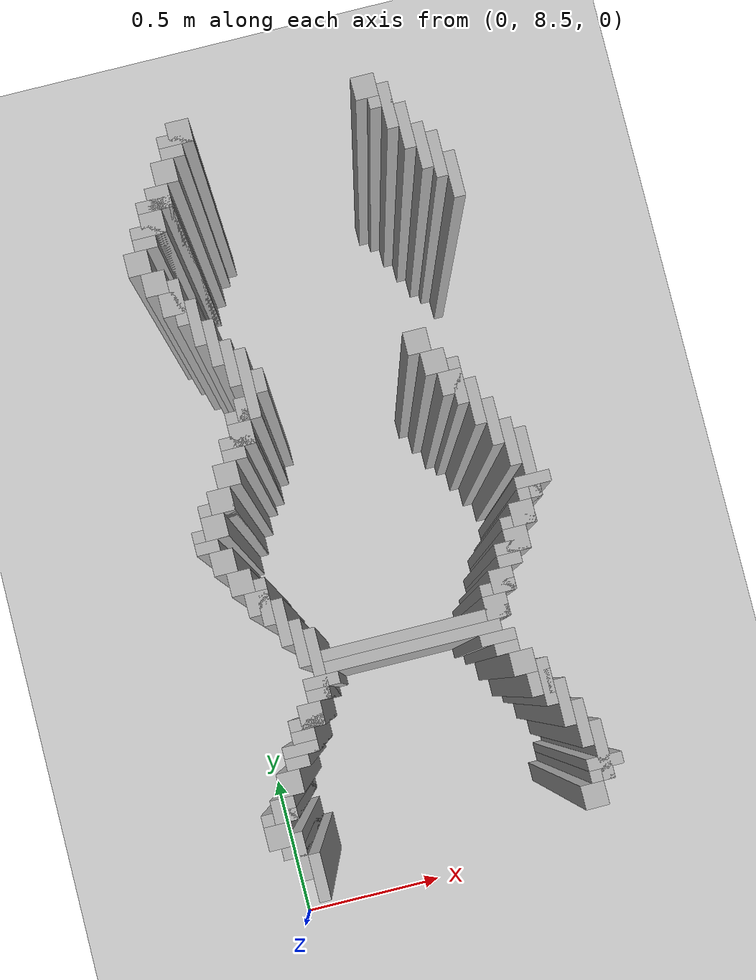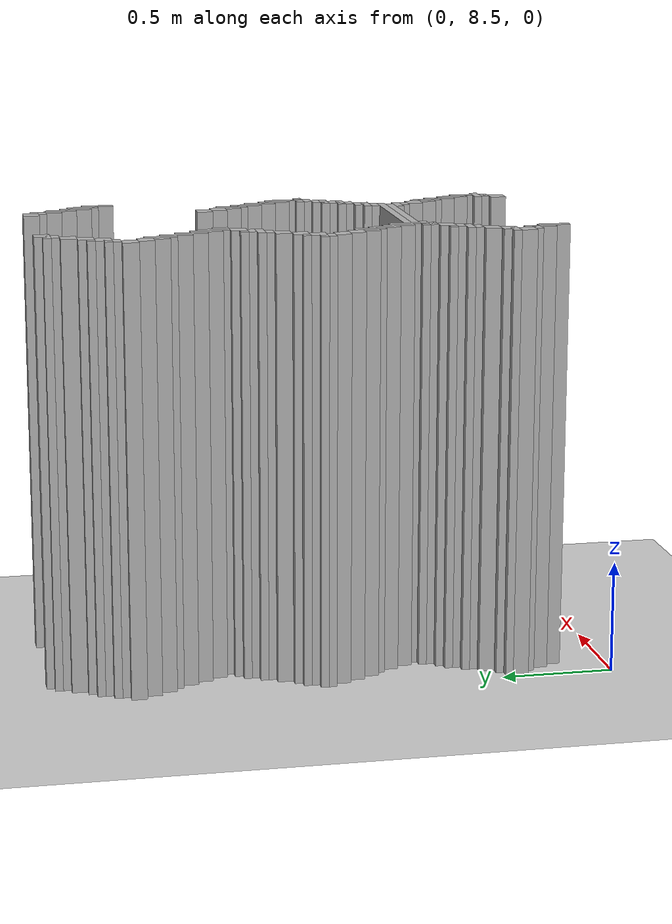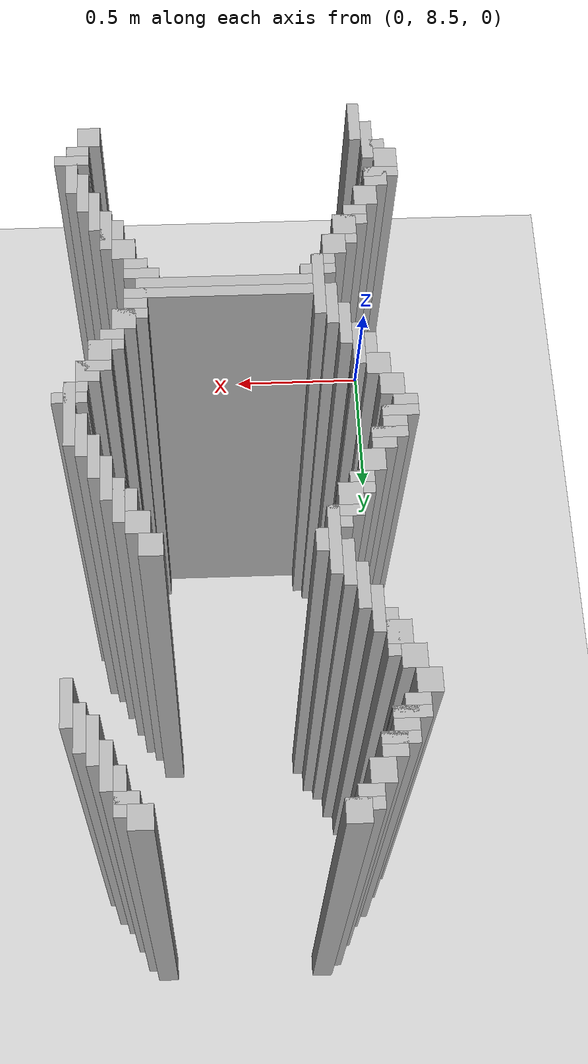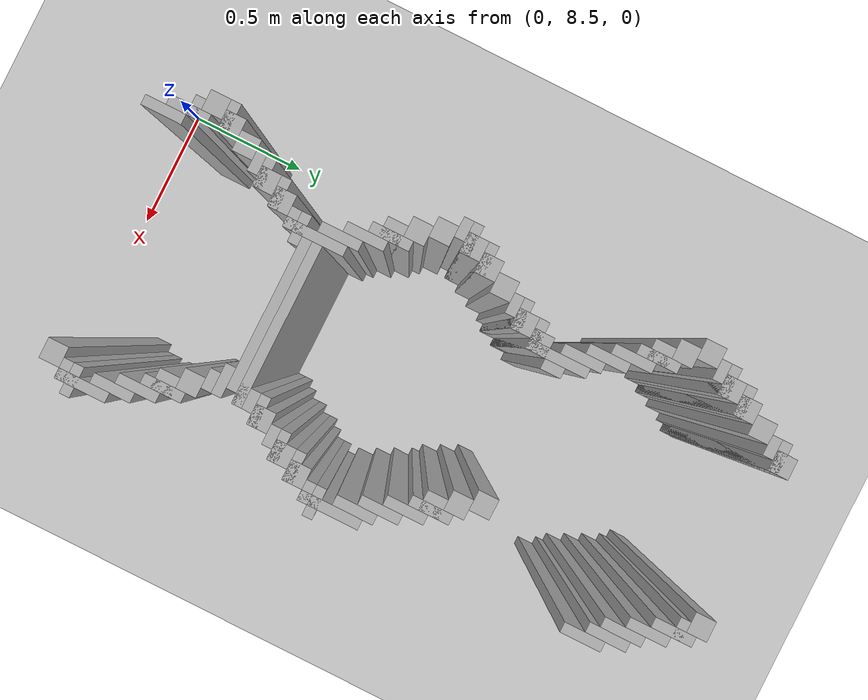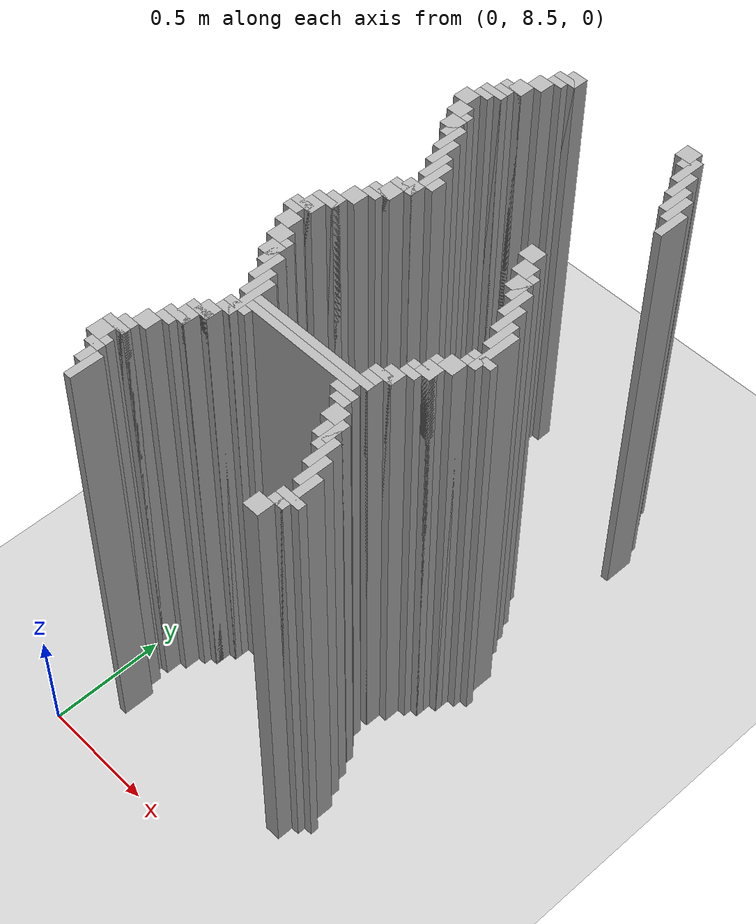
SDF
<sdf version="1.6">
 <world name="slam_world">
  <model name="ground_plane">
   <static>true</static>
   <link name="link">
    <collision name="collision">
     <geometry><plane><normal>0 0 1</normal><size>100 100</size></plane></geometry>
    </collision>
    <visual name="visual">
     <geometry><plane><normal>0 0 1</normal><size>100 100</size></plane></geometry>
     <material>
      <ambient>0.8 0.8 0.8 1</ambient>
      <diffuse>0.8 0.8 0.8 1</diffuse>
      <specular>0.8 0.8 0.8 1</specular>
     </material>
    </visual>
   </link>
  </model>
  <model name="wall_2173">
   <static>true</static>
   <pose>0.27842227378190254 10.962877030162412 1.0 0 0 0</pose>
   <link name="link">
    <collision name="collision">
     <geometry><box><size>0.06960556844547564 0.06960556844547564 2.0</size></box></geometry>
    </collision>
    <visual name="visual">
     <geometry><box><size>0.06960556844547564 0.06960556844547564 2.0</size></box></geometry>
     <material><ambient>0.5 0.5 0.5 1</ambient><diffuse>0.7 0.7 0.7 1</diffuse></material>
    </visual>
   </link>
  </model>
  <model name="wall_2174">
   <static>true</static>
   <pose>0.8352668213457076 10.962877030162412 1.0 0 0 0</pose>
   <link name="link">
    <collision name="collision">
     <geometry><box><size>0.06960556844547564 0.06960556844547564 2.0</size></box></geometry>
    </collision>
    <visual name="visual">
     <geometry><box><size>0.06960556844547564 0.06960556844547564 2.0</size></box></geometry>
     <material><ambient>0.5 0.5 0.5 1</ambient><diffuse>0.7 0.7 0.7 1</diffuse></material>
    </visual>
   </link>
  </model>
  <model name="wall_2188">
   <static>true</static>
   <pose>0.2610208816705336 10.945475638051043 1.0 0 0 0</pose>
   <link name="link">
    <collision name="collision">
     <geometry><box><size>0.10440835266821345 0.03480278422273782 2.0</size></box></geometry>
    </collision>
    <visual name="visual">
     <geometry><box><size>0.10440835266821345 0.03480278422273782 2.0</size></box></geometry>
     <material><ambient>0.5 0.5 0.5 1</ambient><diffuse>0.7 0.7 0.7 1</diffuse></material>
    </visual>
   </link>
  </model>
  <model name="wall_2189">
   <static>true</static>
   <pose>0.8874709976798143 10.893271461716937 1.0 0 0 0</pose>
   <link name="link">
    <collision name="collision">
     <geometry><box><size>0.03480278422273782 0.13921113689095127 2.0</size></box></geometry>
    </collision>
    <visual name="visual">
     <geometry><box><size>0.03480278422273782 0.13921113689095127 2.0</size></box></geometry>
     <material><ambient>0.5 0.5 0.5 1</ambient><diffuse>0.7 0.7 0.7 1</diffuse></material>
    </visual>
   </link>
  </model>
  <model name="wall_2203">
   <static>true</static>
   <pose>0.24361948955916474 10.910672853828306 1.0 0 0 0</pose>
   <link name="link">
    <collision name="collision">
     <geometry><box><size>0.06960556844547564 0.03480278422273782 2.0</size></box></geometry>
    </collision>
    <visual name="visual">
     <geometry><box><size>0.06960556844547564 0.03480278422273782 2.0</size></box></geometry>
     <material><ambient>0.5 0.5 0.5 1</ambient><diffuse>0.7 0.7 0.7 1</diffuse></material>
    </visual>
   </link>
  </model>
  <model name="wall_2204">
   <static>true</static>
   <pose>0.8700696055684455 10.910672853828306 1.0 0 0 0</pose>
   <link name="link">
    <collision name="collision">
     <geometry><box><size>0.06960556844547564 0.03480278422273782 2.0</size></box></geometry>
    </collision>
    <visual name="visual">
     <geometry><box><size>0.06960556844547564 0.03480278422273782 2.0</size></box></geometry>
     <material><ambient>0.5 0.5 0.5 1</ambient><diffuse>0.7 0.7 0.7 1</diffuse></material>
    </visual>
   </link>
  </model>
  <model name="wall_2213">
   <static>true</static>
   <pose>0.2088167053364269 10.8584686774942 1.0 0 0 0</pose>
   <link name="link">
    <collision name="collision">
     <geometry><box><size>0.06960556844547564 0.06960556844547564 2.0</size></box></geometry>
    </collision>
    <visual name="visual">
     <geometry><box><size>0.06960556844547564 0.06960556844547564 2.0</size></box></geometry>
     <material><ambient>0.5 0.5 0.5 1</ambient><diffuse>0.7 0.7 0.7 1</diffuse></material>
    </visual>
   </link>
  </model>
  <model name="wall_2214">
   <static>true</static>
   <pose>0.9222737819025522 10.82366589327146 1.0 0 0 0</pose>
   <link name="link">
    <collision name="collision">
     <geometry><box><size>0.03480278422273782 0.13921113689095127 2.0</size></box></geometry>
    </collision>
    <visual name="visual">
     <geometry><box><size>0.03480278422273782 0.13921113689095127 2.0</size></box></geometry>
     <material><ambient>0.5 0.5 0.5 1</ambient><diffuse>0.7 0.7 0.7 1</diffuse></material>
    </visual>
   </link>
  </model>
  <model name="wall_2228">
   <static>true</static>
   <pose>0.17401392111368907 10.788863109048723 1.0 0 0 0</pose>
   <link name="link">
    <collision name="collision">
     <geometry><box><size>0.06960556844547564 0.06960556844547564 2.0</size></box></geometry>
    </collision>
    <visual name="visual">
     <geometry><box><size>0.06960556844547564 0.06960556844547564 2.0</size></box></geometry>
     <material><ambient>0.5 0.5 0.5 1</ambient><diffuse>0.7 0.7 0.7 1</diffuse></material>
    </visual>
   </link>
  </model>
  <model name="wall_2229">
   <static>true</static>
   <pose>0.95707656612529 10.754060324825986 1.0 0 0 0</pose>
   <link name="link">
    <collision name="collision">
     <geometry><box><size>0.03480278422273782 0.13921113689095127 2.0</size></box></geometry>
    </collision>
    <visual name="visual">
     <geometry><box><size>0.03480278422273782 0.13921113689095127 2.0</size></box></geometry>
     <material><ambient>0.5 0.5 0.5 1</ambient><diffuse>0.7 0.7 0.7 1</diffuse></material>
    </visual>
   </link>
  </model>
  <model name="wall_2243">
   <static>true</static>
   <pose>0.15661252900232017 10.771461716937354 1.0 0 0 0</pose>
   <link name="link">
    <collision name="collision">
     <geometry><box><size>0.10440835266821345 0.03480278422273782 2.0</size></box></geometry>
    </collision>
    <visual name="visual">
     <geometry><box><size>0.10440835266821345 0.03480278422273782 2.0</size></box></geometry>
     <material><ambient>0.5 0.5 0.5 1</ambient><diffuse>0.7 0.7 0.7 1</diffuse></material>
    </visual>
   </link>
  </model>
  <model name="wall_2244">
   <static>true</static>
   <pose>0.9918793503480278 10.719257540603248 1.0 0 0 0</pose>
   <link name="link">
    <collision name="collision">
     <geometry><box><size>0.03480278422273782 0.13921113689095127 2.0</size></box></geometry>
    </collision>
    <visual name="visual">
     <geometry><box><size>0.03480278422273782 0.13921113689095127 2.0</size></box></geometry>
     <material><ambient>0.5 0.5 0.5 1</ambient><diffuse>0.7 0.7 0.7 1</diffuse></material>
    </visual>
   </link>
  </model>
  <model name="wall_2258">
   <static>true</static>
   <pose>0.13921113689095127 10.719257540603248 1.0 0 0 0</pose>
   <link name="link">
    <collision name="collision">
     <geometry><box><size>0.06960556844547564 0.06960556844547564 2.0</size></box></geometry>
    </collision>
    <visual name="visual">
     <geometry><box><size>0.06960556844547564 0.06960556844547564 2.0</size></box></geometry>
     <material><ambient>0.5 0.5 0.5 1</ambient><diffuse>0.7 0.7 0.7 1</diffuse></material>
    </visual>
   </link>
  </model>
  <model name="wall_2265">
   <static>true</static>
   <pose>0.12180974477958237 10.70185614849188 1.0 0 0 0</pose>
   <link name="link">
    <collision name="collision">
     <geometry><box><size>0.10440835266821345 0.03480278422273782 2.0</size></box></geometry>
    </collision>
    <visual name="visual">
     <geometry><box><size>0.10440835266821345 0.03480278422273782 2.0</size></box></geometry>
     <material><ambient>0.5 0.5 0.5 1</ambient><diffuse>0.7 0.7 0.7 1</diffuse></material>
    </visual>
   </link>
  </model>
  <model name="wall_2266">
   <static>true</static>
   <pose>1.0266821345707655 10.649651972157772 1.0 0 0 0</pose>
   <link name="link">
    <collision name="collision">
     <geometry><box><size>0.03480278422273782 0.13921113689095127 2.0</size></box></geometry>
    </collision>
    <visual name="visual">
     <geometry><box><size>0.03480278422273782 0.13921113689095127 2.0</size></box></geometry>
     <material><ambient>0.5 0.5 0.5 1</ambient><diffuse>0.7 0.7 0.7 1</diffuse></material>
    </visual>
   </link>
  </model>
  <model name="wall_2280">
   <static>true</static>
   <pose>0.10440835266821345 10.66705336426914 1.0 0 0 0</pose>
   <link name="link">
    <collision name="collision">
     <geometry><box><size>0.06960556844547564 0.03480278422273782 2.0</size></box></geometry>
    </collision>
    <visual name="visual">
     <geometry><box><size>0.06960556844547564 0.03480278422273782 2.0</size></box></geometry>
     <material><ambient>0.5 0.5 0.5 1</ambient><diffuse>0.7 0.7 0.7 1</diffuse></material>
    </visual>
   </link>
  </model>
  <model name="wall_2287">
   <static>true</static>
   <pose>0.06960556844547564 10.614849187935034 1.0 0 0 0</pose>
   <link name="link">
    <collision name="collision">
     <geometry><box><size>0.06960556844547564 0.06960556844547564 2.0</size></box></geometry>
    </collision>
    <visual name="visual">
     <geometry><box><size>0.06960556844547564 0.06960556844547564 2.0</size></box></geometry>
     <material><ambient>0.5 0.5 0.5 1</ambient><diffuse>0.7 0.7 0.7 1</diffuse></material>
    </visual>
   </link>
  </model>
  <model name="wall_2302">
   <static>true</static>
   <pose>0.10440835266821345 10.54524361948956 1.0 0 0 0</pose>
   <link name="link">
    <collision name="collision">
     <geometry><box><size>0.06960556844547564 0.06960556844547564 2.0</size></box></geometry>
    </collision>
    <visual name="visual">
     <geometry><box><size>0.06960556844547564 0.06960556844547564 2.0</size></box></geometry>
     <material><ambient>0.5 0.5 0.5 1</ambient><diffuse>0.7 0.7 0.7 1</diffuse></material>
    </visual>
   </link>
  </model>
  <model name="wall_2317">
   <static>true</static>
   <pose>0.15661252900232017 10.475638051044083 1.0 0 0 0</pose>
   <link name="link">
    <collision name="collision">
     <geometry><box><size>0.03480278422273782 0.13921113689095127 2.0</size></box></geometry>
    </collision>
    <visual name="visual">
     <geometry><box><size>0.03480278422273782 0.13921113689095127 2.0</size></box></geometry>
     <material><ambient>0.5 0.5 0.5 1</ambient><diffuse>0.7 0.7 0.7 1</diffuse></material>
    </visual>
   </link>
  </model>
  <model name="wall_2332">
   <static>true</static>
   <pose>0.13921113689095127 10.475638051044083 1.0 0 0 0</pose>
   <link name="link">
    <collision name="collision">
     <geometry><box><size>0.06960556844547564 0.06960556844547564 2.0</size></box></geometry>
    </collision>
    <visual name="visual">
     <geometry><box><size>0.06960556844547564 0.06960556844547564 2.0</size></box></geometry>
     <material><ambient>0.5 0.5 0.5 1</ambient><diffuse>0.7 0.7 0.7 1</diffuse></material>
    </visual>
   </link>
  </model>
  <model name="wall_2347">
   <static>true</static>
   <pose>0.191415313225058 10.406032482598608 1.0 0 0 0</pose>
   <link name="link">
    <collision name="collision">
     <geometry><box><size>0.03480278422273782 0.13921113689095127 2.0</size></box></geometry>
    </collision>
    <visual name="visual">
     <geometry><box><size>0.03480278422273782 0.13921113689095127 2.0</size></box></geometry>
     <material><ambient>0.5 0.5 0.5 1</ambient><diffuse>0.7 0.7 0.7 1</diffuse></material>
    </visual>
   </link>
  </model>
  <model name="wall_2367">
   <static>true</static>
   <pose>0.2262180974477958 10.336426914153131 1.0 0 0 0</pose>
   <link name="link">
    <collision name="collision">
     <geometry><box><size>0.03480278422273782 0.13921113689095127 2.0</size></box></geometry>
    </collision>
    <visual name="visual">
     <geometry><box><size>0.03480278422273782 0.13921113689095127 2.0</size></box></geometry>
     <material><ambient>0.5 0.5 0.5 1</ambient><diffuse>0.7 0.7 0.7 1</diffuse></material>
    </visual>
   </link>
  </model>
  <model name="wall_2382">
   <static>true</static>
   <pose>0.2610208816705336 10.266821345707656 1.0 0 0 0</pose>
   <link name="link">
    <collision name="collision">
     <geometry><box><size>0.03480278422273782 0.13921113689095127 2.0</size></box></geometry>
    </collision>
    <visual name="visual">
     <geometry><box><size>0.03480278422273782 0.13921113689095127 2.0</size></box></geometry>
     <material><ambient>0.5 0.5 0.5 1</ambient><diffuse>0.7 0.7 0.7 1</diffuse></material>
    </visual>
   </link>
  </model>
  <model name="wall_2397">
   <static>true</static>
   <pose>0.29582366589327147 10.19721577726218 1.0 0 0 0</pose>
   <link name="link">
    <collision name="collision">
     <geometry><box><size>0.03480278422273782 0.2088167053364269 2.0</size></box></geometry>
    </collision>
    <visual name="visual">
     <geometry><box><size>0.03480278422273782 0.2088167053364269 2.0</size></box></geometry>
     <material><ambient>0.5 0.5 0.5 1</ambient><diffuse>0.7 0.7 0.7 1</diffuse></material>
    </visual>
   </link>
  </model>
  <model name="wall_2417">
   <static>true</static>
   <pose>0.3306264501160093 10.19721577726218 1.0 0 0 0</pose>
   <link name="link">
    <collision name="collision">
     <geometry><box><size>0.03480278422273782 0.06960556844547564 2.0</size></box></geometry>
    </collision>
    <visual name="visual">
     <geometry><box><size>0.03480278422273782 0.06960556844547564 2.0</size></box></geometry>
     <material><ambient>0.5 0.5 0.5 1</ambient><diffuse>0.7 0.7 0.7 1</diffuse></material>
    </visual>
   </link>
  </model>
  <model name="wall_2418">
   <static>true</static>
   <pose>0.8004640371229698 10.19721577726218 1.0 0 0 0</pose>
   <link name="link">
    <collision name="collision">
     <geometry><box><size>0.06960556844547564 0.06960556844547564 2.0</size></box></geometry>
    </collision>
    <visual name="visual">
     <geometry><box><size>0.06960556844547564 0.06960556844547564 2.0</size></box></geometry>
     <material><ambient>0.5 0.5 0.5 1</ambient><diffuse>0.7 0.7 0.7 1</diffuse></material>
    </visual>
   </link>
  </model>
  <model name="wall_2438">
   <static>true</static>
   <pose>0.27842227378190254 10.127610208816705 1.0 0 0 0</pose>
   <link name="link">
    <collision name="collision">
     <geometry><box><size>0.06960556844547564 0.06960556844547564 2.0</size></box></geometry>
    </collision>
    <visual name="visual">
     <geometry><box><size>0.06960556844547564 0.06960556844547564 2.0</size></box></geometry>
     <material><ambient>0.5 0.5 0.5 1</ambient><diffuse>0.7 0.7 0.7 1</diffuse></material>
    </visual>
   </link>
  </model>
  <model name="wall_2439">
   <static>true</static>
   <pose>0.8352668213457076 10.127610208816705 1.0 0 0 0</pose>
   <link name="link">
    <collision name="collision">
     <geometry><box><size>0.06960556844547564 0.06960556844547564 2.0</size></box></geometry>
    </collision>
    <visual name="visual">
     <geometry><box><size>0.06960556844547564 0.06960556844547564 2.0</size></box></geometry>
     <material><ambient>0.5 0.5 0.5 1</ambient><diffuse>0.7 0.7 0.7 1</diffuse></material>
    </visual>
   </link>
  </model>
  <model name="wall_2452">
   <static>true</static>
   <pose>0.2610208816705336 10.110208816705336 1.0 0 0 0</pose>
   <link name="link">
    <collision name="collision">
     <geometry><box><size>0.10440835266821345 0.03480278422273782 2.0</size></box></geometry>
    </collision>
    <visual name="visual">
     <geometry><box><size>0.10440835266821345 0.03480278422273782 2.0</size></box></geometry>
     <material><ambient>0.5 0.5 0.5 1</ambient><diffuse>0.7 0.7 0.7 1</diffuse></material>
    </visual>
   </link>
  </model>
  <model name="wall_2453">
   <static>true</static>
   <pose>0.8874709976798143 10.058004640371228 1.0 0 0 0</pose>
   <link name="link">
    <collision name="collision">
     <geometry><box><size>0.03480278422273782 0.13921113689095127 2.0</size></box></geometry>
    </collision>
    <visual name="visual">
     <geometry><box><size>0.03480278422273782 0.13921113689095127 2.0</size></box></geometry>
     <material><ambient>0.5 0.5 0.5 1</ambient><diffuse>0.7 0.7 0.7 1</diffuse></material>
    </visual>
   </link>
  </model>
  <model name="wall_2466">
   <static>true</static>
   <pose>0.24361948955916474 10.058004640371228 1.0 0 0 0</pose>
   <link name="link">
    <collision name="collision">
     <geometry><box><size>0.06960556844547564 0.06960556844547564 2.0</size></box></geometry>
    </collision>
    <visual name="visual">
     <geometry><box><size>0.06960556844547564 0.06960556844547564 2.0</size></box></geometry>
     <material><ambient>0.5 0.5 0.5 1</ambient><diffuse>0.7 0.7 0.7 1</diffuse></material>
    </visual>
   </link>
  </model>
  <model name="wall_2467">
   <static>true</static>
   <pose>0.8700696055684455 10.058004640371228 1.0 0 0 0</pose>
   <link name="link">
    <collision name="collision">
     <geometry><box><size>0.06960556844547564 0.06960556844547564 2.0</size></box></geometry>
    </collision>
    <visual name="visual">
     <geometry><box><size>0.06960556844547564 0.06960556844547564 2.0</size></box></geometry>
     <material><ambient>0.5 0.5 0.5 1</ambient><diffuse>0.7 0.7 0.7 1</diffuse></material>
    </visual>
   </link>
  </model>
  <model name="wall_2480">
   <static>true</static>
   <pose>0.2262180974477958 10.04060324825986 1.0 0 0 0</pose>
   <link name="link">
    <collision name="collision">
     <geometry><box><size>0.10440835266821345 0.03480278422273782 2.0</size></box></geometry>
    </collision>
    <visual name="visual">
     <geometry><box><size>0.10440835266821345 0.03480278422273782 2.0</size></box></geometry>
     <material><ambient>0.5 0.5 0.5 1</ambient><diffuse>0.7 0.7 0.7 1</diffuse></material>
    </visual>
   </link>
  </model>
  <model name="wall_2481">
   <static>true</static>
   <pose>0.9222737819025522 9.988399071925754 1.0 0 0 0</pose>
   <link name="link">
    <collision name="collision">
     <geometry><box><size>0.03480278422273782 0.13921113689095127 2.0</size></box></geometry>
    </collision>
    <visual name="visual">
     <geometry><box><size>0.03480278422273782 0.13921113689095127 2.0</size></box></geometry>
     <material><ambient>0.5 0.5 0.5 1</ambient><diffuse>0.7 0.7 0.7 1</diffuse></material>
    </visual>
   </link>
  </model>
  <model name="wall_2494">
   <static>true</static>
   <pose>0.2088167053364269 10.005800464037122 1.0 0 0 0</pose>
   <link name="link">
    <collision name="collision">
     <geometry><box><size>0.06960556844547564 0.03480278422273782 2.0</size></box></geometry>
    </collision>
    <visual name="visual">
     <geometry><box><size>0.06960556844547564 0.03480278422273782 2.0</size></box></geometry>
     <material><ambient>0.5 0.5 0.5 1</ambient><diffuse>0.7 0.7 0.7 1</diffuse></material>
    </visual>
   </link>
  </model>
  <model name="wall_2503">
   <static>true</static>
   <pose>0.17401392111368907 9.953596287703016 1.0 0 0 0</pose>
   <link name="link">
    <collision name="collision">
     <geometry><box><size>0.06960556844547564 0.06960556844547564 2.0</size></box></geometry>
    </collision>
    <visual name="visual">
     <geometry><box><size>0.06960556844547564 0.06960556844547564 2.0</size></box></geometry>
     <material><ambient>0.5 0.5 0.5 1</ambient><diffuse>0.7 0.7 0.7 1</diffuse></material>
    </visual>
   </link>
  </model>
  <model name="wall_2504">
   <static>true</static>
   <pose>0.95707656612529 9.918793503480279 1.0 0 0 0</pose>
   <link name="link">
    <collision name="collision">
     <geometry><box><size>0.03480278422273782 0.13921113689095127 2.0</size></box></geometry>
    </collision>
    <visual name="visual">
     <geometry><box><size>0.03480278422273782 0.13921113689095127 2.0</size></box></geometry>
     <material><ambient>0.5 0.5 0.5 1</ambient><diffuse>0.7 0.7 0.7 1</diffuse></material>
    </visual>
   </link>
  </model>
  <model name="wall_2517">
   <static>true</static>
   <pose>0.13921113689095127 9.88399071925754 1.0 0 0 0</pose>
   <link name="link">
    <collision name="collision">
     <geometry><box><size>0.06960556844547564 0.06960556844547564 2.0</size></box></geometry>
    </collision>
    <visual name="visual">
     <geometry><box><size>0.06960556844547564 0.06960556844547564 2.0</size></box></geometry>
     <material><ambient>0.5 0.5 0.5 1</ambient><diffuse>0.7 0.7 0.7 1</diffuse></material>
    </visual>
   </link>
  </model>
  <model name="wall_2518">
   <static>true</static>
   <pose>0.9918793503480278 9.849187935034802 1.0 0 0 0</pose>
   <link name="link">
    <collision name="collision">
     <geometry><box><size>0.03480278422273782 0.13921113689095127 2.0</size></box></geometry>
    </collision>
    <visual name="visual">
     <geometry><box><size>0.03480278422273782 0.13921113689095127 2.0</size></box></geometry>
     <material><ambient>0.5 0.5 0.5 1</ambient><diffuse>0.7 0.7 0.7 1</diffuse></material>
    </visual>
   </link>
  </model>
  <model name="wall_2531">
   <static>true</static>
   <pose>0.12180974477958237 9.86658932714617 1.0 0 0 0</pose>
   <link name="link">
    <collision name="collision">
     <geometry><box><size>0.10440835266821345 0.03480278422273782 2.0</size></box></geometry>
    </collision>
    <visual name="visual">
     <geometry><box><size>0.10440835266821345 0.03480278422273782 2.0</size></box></geometry>
     <material><ambient>0.5 0.5 0.5 1</ambient><diffuse>0.7 0.7 0.7 1</diffuse></material>
    </visual>
   </link>
  </model>
  <model name="wall_2532">
   <static>true</static>
   <pose>1.0266821345707655 9.779582366589327 1.0 0 0 0</pose>
   <link name="link">
    <collision name="collision">
     <geometry><box><size>0.03480278422273782 0.2088167053364269 2.0</size></box></geometry>
    </collision>
    <visual name="visual">
     <geometry><box><size>0.03480278422273782 0.2088167053364269 2.0</size></box></geometry>
     <material><ambient>0.5 0.5 0.5 1</ambient><diffuse>0.7 0.7 0.7 1</diffuse></material>
    </visual>
   </link>
  </model>
  <model name="wall_2545">
   <static>true</static>
   <pose>0.10440835266821345 9.814385150812065 1.0 0 0 0</pose>
   <link name="link">
    <collision name="collision">
     <geometry><box><size>0.06960556844547564 0.06960556844547564 2.0</size></box></geometry>
    </collision>
    <visual name="visual">
     <geometry><box><size>0.06960556844547564 0.06960556844547564 2.0</size></box></geometry>
     <material><ambient>0.5 0.5 0.5 1</ambient><diffuse>0.7 0.7 0.7 1</diffuse></material>
    </visual>
   </link>
  </model>
  <model name="wall_2554">
   <static>true</static>
   <pose>0.08700696055684454 9.796983758700696 1.0 0 0 0</pose>
   <link name="link">
    <collision name="collision">
     <geometry><box><size>0.10440835266821345 0.03480278422273782 2.0</size></box></geometry>
    </collision>
    <visual name="visual">
     <geometry><box><size>0.10440835266821345 0.03480278422273782 2.0</size></box></geometry>
     <material><ambient>0.5 0.5 0.5 1</ambient><diffuse>0.7 0.7 0.7 1</diffuse></material>
    </visual>
   </link>
  </model>
  <model name="wall_2566">
   <static>true</static>
   <pose>0.06960556844547564 9.762180974477959 1.0 0 0 0</pose>
   <link name="link">
    <collision name="collision">
     <geometry><box><size>0.06960556844547564 0.03480278422273782 2.0</size></box></geometry>
    </collision>
    <visual name="visual">
     <geometry><box><size>0.06960556844547564 0.03480278422273782 2.0</size></box></geometry>
     <material><ambient>0.5 0.5 0.5 1</ambient><diffuse>0.7 0.7 0.7 1</diffuse></material>
    </visual>
   </link>
  </model>
  <model name="wall_2575">
   <static>true</static>
   <pose>0.10440835266821345 9.70997679814385 1.0 0 0 0</pose>
   <link name="link">
    <collision name="collision">
     <geometry><box><size>0.06960556844547564 0.06960556844547564 2.0</size></box></geometry>
    </collision>
    <visual name="visual">
     <geometry><box><size>0.06960556844547564 0.06960556844547564 2.0</size></box></geometry>
     <material><ambient>0.5 0.5 0.5 1</ambient><diffuse>0.7 0.7 0.7 1</diffuse></material>
    </visual>
   </link>
  </model>
  <model name="wall_2576">
   <static>true</static>
   <pose>1.0266821345707655 9.72737819025522 1.0 0 0 0</pose>
   <link name="link">
    <collision name="collision">
     <geometry><box><size>0.10440835266821345 0.03480278422273782 2.0</size></box></geometry>
    </collision>
    <visual name="visual">
     <geometry><box><size>0.10440835266821345 0.03480278422273782 2.0</size></box></geometry>
     <material><ambient>0.5 0.5 0.5 1</ambient><diffuse>0.7 0.7 0.7 1</diffuse></material>
    </visual>
   </link>
  </model>
  <model name="wall_2589">
   <static>true</static>
   <pose>1.0092807424593968 9.692575406032482 1.0 0 0 0</pose>
   <link name="link">
    <collision name="collision">
     <geometry><box><size>0.06960556844547564 0.03480278422273782 2.0</size></box></geometry>
    </collision>
    <visual name="visual">
     <geometry><box><size>0.06960556844547564 0.03480278422273782 2.0</size></box></geometry>
     <material><ambient>0.5 0.5 0.5 1</ambient><diffuse>0.7 0.7 0.7 1</diffuse></material>
    </visual>
   </link>
  </model>
  <model name="wall_2600">
   <static>true</static>
   <pose>0.13921113689095127 9.640371229698376 1.0 0 0 0</pose>
   <link name="link">
    <collision name="collision">
     <geometry><box><size>0.06960556844547564 0.06960556844547564 2.0</size></box></geometry>
    </collision>
    <visual name="visual">
     <geometry><box><size>0.06960556844547564 0.06960556844547564 2.0</size></box></geometry>
     <material><ambient>0.5 0.5 0.5 1</ambient><diffuse>0.7 0.7 0.7 1</diffuse></material>
    </visual>
   </link>
  </model>
  <model name="wall_2601">
   <static>true</static>
   <pose>0.974477958236659 9.640371229698376 1.0 0 0 0</pose>
   <link name="link">
    <collision name="collision">
     <geometry><box><size>0.06960556844547564 0.06960556844547564 2.0</size></box></geometry>
    </collision>
    <visual name="visual">
     <geometry><box><size>0.06960556844547564 0.06960556844547564 2.0</size></box></geometry>
     <material><ambient>0.5 0.5 0.5 1</ambient><diffuse>0.7 0.7 0.7 1</diffuse></material>
    </visual>
   </link>
  </model>
  <model name="wall_2614">
   <static>true</static>
   <pose>0.191415313225058 9.5707656612529 1.0 0 0 0</pose>
   <link name="link">
    <collision name="collision">
     <geometry><box><size>0.03480278422273782 0.13921113689095127 2.0</size></box></geometry>
    </collision>
    <visual name="visual">
     <geometry><box><size>0.03480278422273782 0.13921113689095127 2.0</size></box></geometry>
     <material><ambient>0.5 0.5 0.5 1</ambient><diffuse>0.7 0.7 0.7 1</diffuse></material>
    </visual>
   </link>
  </model>
  <model name="wall_2615">
   <static>true</static>
   <pose>0.95707656612529 9.622969837587007 1.0 0 0 0</pose>
   <link name="link">
    <collision name="collision">
     <geometry><box><size>0.10440835266821345 0.03480278422273782 2.0</size></box></geometry>
    </collision>
    <visual name="visual">
     <geometry><box><size>0.10440835266821345 0.03480278422273782 2.0</size></box></geometry>
     <material><ambient>0.5 0.5 0.5 1</ambient><diffuse>0.7 0.7 0.7 1</diffuse></material>
    </visual>
   </link>
  </model>
  <model name="wall_2628">
   <static>true</static>
   <pose>0.17401392111368907 9.5707656612529 1.0 0 0 0</pose>
   <link name="link">
    <collision name="collision">
     <geometry><box><size>0.06960556844547564 0.06960556844547564 2.0</size></box></geometry>
    </collision>
    <visual name="visual">
     <geometry><box><size>0.06960556844547564 0.06960556844547564 2.0</size></box></geometry>
     <material><ambient>0.5 0.5 0.5 1</ambient><diffuse>0.7 0.7 0.7 1</diffuse></material>
    </visual>
   </link>
  </model>
  <model name="wall_2629">
   <static>true</static>
   <pose>0.9396751740139211 9.5707656612529 1.0 0 0 0</pose>
   <link name="link">
    <collision name="collision">
     <geometry><box><size>0.06960556844547564 0.06960556844547564 2.0</size></box></geometry>
    </collision>
    <visual name="visual">
     <geometry><box><size>0.06960556844547564 0.06960556844547564 2.0</size></box></geometry>
     <material><ambient>0.5 0.5 0.5 1</ambient><diffuse>0.7 0.7 0.7 1</diffuse></material>
    </visual>
   </link>
  </model>
  <model name="wall_2642">
   <static>true</static>
   <pose>0.2262180974477958 9.501160092807424 1.0 0 0 0</pose>
   <link name="link">
    <collision name="collision">
     <geometry><box><size>0.03480278422273782 0.13921113689095127 2.0</size></box></geometry>
    </collision>
    <visual name="visual">
     <geometry><box><size>0.03480278422273782 0.13921113689095127 2.0</size></box></geometry>
     <material><ambient>0.5 0.5 0.5 1</ambient><diffuse>0.7 0.7 0.7 1</diffuse></material>
    </visual>
   </link>
  </model>
  <model name="wall_2643">
   <static>true</static>
   <pose>0.9222737819025522 9.55336426914153 1.0 0 0 0</pose>
   <link name="link">
    <collision name="collision">
     <geometry><box><size>0.10440835266821345 0.03480278422273782 2.0</size></box></geometry>
    </collision>
    <visual name="visual">
     <geometry><box><size>0.10440835266821345 0.03480278422273782 2.0</size></box></geometry>
     <material><ambient>0.5 0.5 0.5 1</ambient><diffuse>0.7 0.7 0.7 1</diffuse></material>
    </visual>
   </link>
  </model>
  <model name="wall_2656">
   <static>true</static>
   <pose>0.9048723897911832 9.518561484918793 1.0 0 0 0</pose>
   <link name="link">
    <collision name="collision">
     <geometry><box><size>0.06960556844547564 0.03480278422273782 2.0</size></box></geometry>
    </collision>
    <visual name="visual">
     <geometry><box><size>0.06960556844547564 0.03480278422273782 2.0</size></box></geometry>
     <material><ambient>0.5 0.5 0.5 1</ambient><diffuse>0.7 0.7 0.7 1</diffuse></material>
    </visual>
   </link>
  </model>
  <model name="wall_2661">
   <static>true</static>
   <pose>0.2610208816705336 9.431554524361948 1.0 0 0 0</pose>
   <link name="link">
    <collision name="collision">
     <geometry><box><size>0.03480278422273782 0.13921113689095127 2.0</size></box></geometry>
    </collision>
    <visual name="visual">
     <geometry><box><size>0.03480278422273782 0.13921113689095127 2.0</size></box></geometry>
     <material><ambient>0.5 0.5 0.5 1</ambient><diffuse>0.7 0.7 0.7 1</diffuse></material>
    </visual>
   </link>
  </model>
  <model name="wall_2662">
   <static>true</static>
   <pose>0.8700696055684455 9.466357308584687 1.0 0 0 0</pose>
   <link name="link">
    <collision name="collision">
     <geometry><box><size>0.06960556844547564 0.06960556844547564 2.0</size></box></geometry>
    </collision>
    <visual name="visual">
     <geometry><box><size>0.06960556844547564 0.06960556844547564 2.0</size></box></geometry>
     <material><ambient>0.5 0.5 0.5 1</ambient><diffuse>0.7 0.7 0.7 1</diffuse></material>
    </visual>
   </link>
  </model>
  <model name="wall_2675">
   <static>true</static>
   <pose>0.29582366589327147 9.361948955916473 1.0 0 0 0</pose>
   <link name="link">
    <collision name="collision">
     <geometry><box><size>0.03480278422273782 0.2088167053364269 2.0</size></box></geometry>
    </collision>
    <visual name="visual">
     <geometry><box><size>0.03480278422273782 0.2088167053364269 2.0</size></box></geometry>
     <material><ambient>0.5 0.5 0.5 1</ambient><diffuse>0.7 0.7 0.7 1</diffuse></material>
    </visual>
   </link>
  </model>
  <model name="wall_2676">
   <static>true</static>
   <pose>0.8526682134570766 9.448955916473318 1.0 0 0 0</pose>
   <link name="link">
    <collision name="collision">
     <geometry><box><size>0.10440835266821345 0.03480278422273782 2.0</size></box></geometry>
    </collision>
    <visual name="visual">
     <geometry><box><size>0.10440835266821345 0.03480278422273782 2.0</size></box></geometry>
     <material><ambient>0.5 0.5 0.5 1</ambient><diffuse>0.7 0.7 0.7 1</diffuse></material>
    </visual>
   </link>
  </model>
  <model name="wall_2689">
   <static>true</static>
   <pose>0.8352668213457076 9.39675174013921 1.0 0 0 0</pose>
   <link name="link">
    <collision name="collision">
     <geometry><box><size>0.06960556844547564 0.06960556844547564 2.0</size></box></geometry>
    </collision>
    <visual name="visual">
     <geometry><box><size>0.06960556844547564 0.06960556844547564 2.0</size></box></geometry>
     <material><ambient>0.5 0.5 0.5 1</ambient><diffuse>0.7 0.7 0.7 1</diffuse></material>
    </visual>
   </link>
  </model>
  <model name="wall_2694">
   <static>true</static>
   <pose>0.5916473317865429 9.379350348027842 1.0 0 0 0</pose>
   <link name="link">
    <collision name="collision">
     <geometry><box><size>0.5568445475638051 0.03480278422273782 2.0</size></box></geometry>
    </collision>
    <visual name="visual">
     <geometry><box><size>0.5568445475638051 0.03480278422273782 2.0</size></box></geometry>
     <material><ambient>0.5 0.5 0.5 1</ambient><diffuse>0.7 0.7 0.7 1</diffuse></material>
    </visual>
   </link>
  </model>
  <model name="wall_2707">
   <static>true</static>
   <pose>0.574245939675174 9.344547563805104 1.0 0 0 0</pose>
   <link name="link">
    <collision name="collision">
     <geometry><box><size>0.5220417633410672 0.03480278422273782 2.0</size></box></geometry>
    </collision>
    <visual name="visual">
     <geometry><box><size>0.5220417633410672 0.03480278422273782 2.0</size></box></geometry>
     <material><ambient>0.5 0.5 0.5 1</ambient><diffuse>0.7 0.7 0.7 1</diffuse></material>
    </visual>
   </link>
  </model>
  <model name="wall_2717">
   <static>true</static>
   <pose>0.29582366589327147 9.309744779582367 1.0 0 0 0</pose>
   <link name="link">
    <collision name="collision">
     <geometry><box><size>0.10440835266821345 0.03480278422273782 2.0</size></box></geometry>
    </collision>
    <visual name="visual">
     <geometry><box><size>0.10440835266821345 0.03480278422273782 2.0</size></box></geometry>
     <material><ambient>0.5 0.5 0.5 1</ambient><diffuse>0.7 0.7 0.7 1</diffuse></material>
    </visual>
   </link>
  </model>
  <model name="wall_2718">
   <static>true</static>
   <pose>0.8178654292343387 9.309744779582367 1.0 0 0 0</pose>
   <link name="link">
    <collision name="collision">
     <geometry><box><size>0.10440835266821345 0.03480278422273782 2.0</size></box></geometry>
    </collision>
    <visual name="visual">
     <geometry><box><size>0.10440835266821345 0.03480278422273782 2.0</size></box></geometry>
     <material><ambient>0.5 0.5 0.5 1</ambient><diffuse>0.7 0.7 0.7 1</diffuse></material>
    </visual>
   </link>
  </model>
  <model name="wall_2733">
   <static>true</static>
   <pose>0.27842227378190254 9.274941995359628 1.0 0 0 0</pose>
   <link name="link">
    <collision name="collision">
     <geometry><box><size>0.06960556844547564 0.03480278422273782 2.0</size></box></geometry>
    </collision>
    <visual name="visual">
     <geometry><box><size>0.06960556844547564 0.03480278422273782 2.0</size></box></geometry>
     <material><ambient>0.5 0.5 0.5 1</ambient><diffuse>0.7 0.7 0.7 1</diffuse></material>
    </visual>
   </link>
  </model>
  <model name="wall_2734">
   <static>true</static>
   <pose>0.8352668213457076 9.274941995359628 1.0 0 0 0</pose>
   <link name="link">
    <collision name="collision">
     <geometry><box><size>0.06960556844547564 0.03480278422273782 2.0</size></box></geometry>
    </collision>
    <visual name="visual">
     <geometry><box><size>0.06960556844547564 0.03480278422273782 2.0</size></box></geometry>
     <material><ambient>0.5 0.5 0.5 1</ambient><diffuse>0.7 0.7 0.7 1</diffuse></material>
    </visual>
   </link>
  </model>
  <model name="wall_2746">
   <static>true</static>
   <pose>0.24361948955916474 9.222737819025522 1.0 0 0 0</pose>
   <link name="link">
    <collision name="collision">
     <geometry><box><size>0.06960556844547564 0.06960556844547564 2.0</size></box></geometry>
    </collision>
    <visual name="visual">
     <geometry><box><size>0.06960556844547564 0.06960556844547564 2.0</size></box></geometry>
     <material><ambient>0.5 0.5 0.5 1</ambient><diffuse>0.7 0.7 0.7 1</diffuse></material>
    </visual>
   </link>
  </model>
  <model name="wall_2747">
   <static>true</static>
   <pose>0.8700696055684455 9.222737819025522 1.0 0 0 0</pose>
   <link name="link">
    <collision name="collision">
     <geometry><box><size>0.06960556844547564 0.06960556844547564 2.0</size></box></geometry>
    </collision>
    <visual name="visual">
     <geometry><box><size>0.06960556844547564 0.06960556844547564 2.0</size></box></geometry>
     <material><ambient>0.5 0.5 0.5 1</ambient><diffuse>0.7 0.7 0.7 1</diffuse></material>
    </visual>
   </link>
  </model>
  <model name="wall_2762">
   <static>true</static>
   <pose>0.2262180974477958 9.205336426914153 1.0 0 0 0</pose>
   <link name="link">
    <collision name="collision">
     <geometry><box><size>0.10440835266821345 0.03480278422273782 2.0</size></box></geometry>
    </collision>
    <visual name="visual">
     <geometry><box><size>0.10440835266821345 0.03480278422273782 2.0</size></box></geometry>
     <material><ambient>0.5 0.5 0.5 1</ambient><diffuse>0.7 0.7 0.7 1</diffuse></material>
    </visual>
   </link>
  </model>
  <model name="wall_2763">
   <static>true</static>
   <pose>0.9222737819025522 9.153132250580047 1.0 0 0 0</pose>
   <link name="link">
    <collision name="collision">
     <geometry><box><size>0.03480278422273782 0.13921113689095127 2.0</size></box></geometry>
    </collision>
    <visual name="visual">
     <geometry><box><size>0.03480278422273782 0.13921113689095127 2.0</size></box></geometry>
     <material><ambient>0.5 0.5 0.5 1</ambient><diffuse>0.7 0.7 0.7 1</diffuse></material>
    </visual>
   </link>
  </model>
  <model name="wall_2778">
   <static>true</static>
   <pose>0.2088167053364269 9.153132250580047 1.0 0 0 0</pose>
   <link name="link">
    <collision name="collision">
     <geometry><box><size>0.06960556844547564 0.06960556844547564 2.0</size></box></geometry>
    </collision>
    <visual name="visual">
     <geometry><box><size>0.06960556844547564 0.06960556844547564 2.0</size></box></geometry>
     <material><ambient>0.5 0.5 0.5 1</ambient><diffuse>0.7 0.7 0.7 1</diffuse></material>
    </visual>
   </link>
  </model>
  <model name="wall_2779">
   <static>true</static>
   <pose>0.9048723897911832 9.153132250580047 1.0 0 0 0</pose>
   <link name="link">
    <collision name="collision">
     <geometry><box><size>0.06960556844547564 0.06960556844547564 2.0</size></box></geometry>
    </collision>
    <visual name="visual">
     <geometry><box><size>0.06960556844547564 0.06960556844547564 2.0</size></box></geometry>
     <material><ambient>0.5 0.5 0.5 1</ambient><diffuse>0.7 0.7 0.7 1</diffuse></material>
    </visual>
   </link>
  </model>
  <model name="wall_2790">
   <static>true</static>
   <pose>0.191415313225058 9.135730858468676 1.0 0 0 0</pose>
   <link name="link">
    <collision name="collision">
     <geometry><box><size>0.10440835266821345 0.03480278422273782 2.0</size></box></geometry>
    </collision>
    <visual name="visual">
     <geometry><box><size>0.10440835266821345 0.03480278422273782 2.0</size></box></geometry>
     <material><ambient>0.5 0.5 0.5 1</ambient><diffuse>0.7 0.7 0.7 1</diffuse></material>
    </visual>
   </link>
  </model>
  <model name="wall_2791">
   <static>true</static>
   <pose>0.95707656612529 9.08352668213457 1.0 0 0 0</pose>
   <link name="link">
    <collision name="collision">
     <geometry><box><size>0.03480278422273782 0.13921113689095127 2.0</size></box></geometry>
    </collision>
    <visual name="visual">
     <geometry><box><size>0.03480278422273782 0.13921113689095127 2.0</size></box></geometry>
     <material><ambient>0.5 0.5 0.5 1</ambient><diffuse>0.7 0.7 0.7 1</diffuse></material>
    </visual>
   </link>
  </model>
  <model name="wall_2806">
   <static>true</static>
   <pose>0.17401392111368907 9.100928074245939 1.0 0 0 0</pose>
   <link name="link">
    <collision name="collision">
     <geometry><box><size>0.06960556844547564 0.03480278422273782 2.0</size></box></geometry>
    </collision>
    <visual name="visual">
     <geometry><box><size>0.06960556844547564 0.03480278422273782 2.0</size></box></geometry>
     <material><ambient>0.5 0.5 0.5 1</ambient><diffuse>0.7 0.7 0.7 1</diffuse></material>
    </visual>
   </link>
  </model>
  <model name="wall_2815">
   <static>true</static>
   <pose>0.13921113689095127 9.048723897911833 1.0 0 0 0</pose>
   <link name="link">
    <collision name="collision">
     <geometry><box><size>0.06960556844547564 0.06960556844547564 2.0</size></box></geometry>
    </collision>
    <visual name="visual">
     <geometry><box><size>0.06960556844547564 0.06960556844547564 2.0</size></box></geometry>
     <material><ambient>0.5 0.5 0.5 1</ambient><diffuse>0.7 0.7 0.7 1</diffuse></material>
    </visual>
   </link>
  </model>
  <model name="wall_2816">
   <static>true</static>
   <pose>0.9918793503480278 9.013921113689095 1.0 0 0 0</pose>
   <link name="link">
    <collision name="collision">
     <geometry><box><size>0.03480278422273782 0.13921113689095127 2.0</size></box></geometry>
    </collision>
    <visual name="visual">
     <geometry><box><size>0.03480278422273782 0.13921113689095127 2.0</size></box></geometry>
     <material><ambient>0.5 0.5 0.5 1</ambient><diffuse>0.7 0.7 0.7 1</diffuse></material>
    </visual>
   </link>
  </model>
  <model name="wall_2831">
   <static>true</static>
   <pose>0.10440835266821345 8.979118329466356 1.0 0 0 0</pose>
   <link name="link">
    <collision name="collision">
     <geometry><box><size>0.06960556844547564 0.06960556844547564 2.0</size></box></geometry>
    </collision>
    <visual name="visual">
     <geometry><box><size>0.06960556844547564 0.06960556844547564 2.0</size></box></geometry>
     <material><ambient>0.5 0.5 0.5 1</ambient><diffuse>0.7 0.7 0.7 1</diffuse></material>
    </visual>
   </link>
  </model>
  <model name="wall_2832">
   <static>true</static>
   <pose>1.0266821345707655 8.92691415313225 1.0 0 0 0</pose>
   <link name="link">
    <collision name="collision">
     <geometry><box><size>0.03480278422273782 0.17401392111368907 2.0</size></box></geometry>
    </collision>
    <visual name="visual">
     <geometry><box><size>0.03480278422273782 0.17401392111368907 2.0</size></box></geometry>
     <material><ambient>0.5 0.5 0.5 1</ambient><diffuse>0.7 0.7 0.7 1</diffuse></material>
    </visual>
   </link>
  </model>
  <model name="wall_2847">
   <static>true</static>
   <pose>0.08700696055684454 8.961716937354987 1.0 0 0 0</pose>
   <link name="link">
    <collision name="collision">
     <geometry><box><size>0.10440835266821345 0.03480278422273782 2.0</size></box></geometry>
    </collision>
    <visual name="visual">
     <geometry><box><size>0.10440835266821345 0.03480278422273782 2.0</size></box></geometry>
     <material><ambient>0.5 0.5 0.5 1</ambient><diffuse>0.7 0.7 0.7 1</diffuse></material>
    </visual>
   </link>
  </model>
  <model name="wall_2863">
   <static>true</static>
   <pose>0.06960556844547564 8.909512761020881 1.0 0 0 0</pose>
   <link name="link">
    <collision name="collision">
     <geometry><box><size>0.06960556844547564 0.06960556844547564 2.0</size></box></geometry>
    </collision>
    <visual name="visual">
     <geometry><box><size>0.06960556844547564 0.06960556844547564 2.0</size></box></geometry>
     <material><ambient>0.5 0.5 0.5 1</ambient><diffuse>0.7 0.7 0.7 1</diffuse></material>
    </visual>
   </link>
  </model>
  <model name="wall_2875">
   <static>true</static>
   <pose>0.12180974477958237 8.839907192575406 1.0 0 0 0</pose>
   <link name="link">
    <collision name="collision">
     <geometry><box><size>0.03480278422273782 0.13921113689095127 2.0</size></box></geometry>
    </collision>
    <visual name="visual">
     <geometry><box><size>0.03480278422273782 0.13921113689095127 2.0</size></box></geometry>
     <material><ambient>0.5 0.5 0.5 1</ambient><diffuse>0.7 0.7 0.7 1</diffuse></material>
    </visual>
   </link>
  </model>
  <model name="wall_2876">
   <static>true</static>
   <pose>1.0266821345707655 8.892111368909513 1.0 0 0 0</pose>
   <link name="link">
    <collision name="collision">
     <geometry><box><size>0.10440835266821345 0.03480278422273782 2.0</size></box></geometry>
    </collision>
    <visual name="visual">
     <geometry><box><size>0.10440835266821345 0.03480278422273782 2.0</size></box></geometry>
     <material><ambient>0.5 0.5 0.5 1</ambient><diffuse>0.7 0.7 0.7 1</diffuse></material>
    </visual>
   </link>
  </model>
  <model name="wall_2891">
   <static>true</static>
   <pose>0.10440835266821345 8.857308584686775 1.0 0 0 0</pose>
   <link name="link">
    <collision name="collision">
     <geometry><box><size>0.06960556844547564 0.03480278422273782 2.0</size></box></geometry>
    </collision>
    <visual name="visual">
     <geometry><box><size>0.06960556844547564 0.03480278422273782 2.0</size></box></geometry>
     <material><ambient>0.5 0.5 0.5 1</ambient><diffuse>0.7 0.7 0.7 1</diffuse></material>
    </visual>
   </link>
  </model>
  <model name="wall_2892">
   <static>true</static>
   <pose>1.0092807424593968 8.857308584686775 1.0 0 0 0</pose>
   <link name="link">
    <collision name="collision">
     <geometry><box><size>0.06960556844547564 0.03480278422273782 2.0</size></box></geometry>
    </collision>
    <visual name="visual">
     <geometry><box><size>0.06960556844547564 0.03480278422273782 2.0</size></box></geometry>
     <material><ambient>0.5 0.5 0.5 1</ambient><diffuse>0.7 0.7 0.7 1</diffuse></material>
    </visual>
   </link>
  </model>
  <model name="wall_2906">
   <static>true</static>
   <pose>0.15661252900232017 8.77030162412993 1.0 0 0 0</pose>
   <link name="link">
    <collision name="collision">
     <geometry><box><size>0.03480278422273782 0.13921113689095127 2.0</size></box></geometry>
    </collision>
    <visual name="visual">
     <geometry><box><size>0.03480278422273782 0.13921113689095127 2.0</size></box></geometry>
     <material><ambient>0.5 0.5 0.5 1</ambient><diffuse>0.7 0.7 0.7 1</diffuse></material>
    </visual>
   </link>
  </model>
  <model name="wall_2907">
   <static>true</static>
   <pose>0.974477958236659 8.805104408352667 1.0 0 0 0</pose>
   <link name="link">
    <collision name="collision">
     <geometry><box><size>0.06960556844547564 0.06960556844547564 2.0</size></box></geometry>
    </collision>
    <visual name="visual">
     <geometry><box><size>0.06960556844547564 0.06960556844547564 2.0</size></box></geometry>
     <material><ambient>0.5 0.5 0.5 1</ambient><diffuse>0.7 0.7 0.7 1</diffuse></material>
    </visual>
   </link>
  </model>
 </world>
</sdf>
